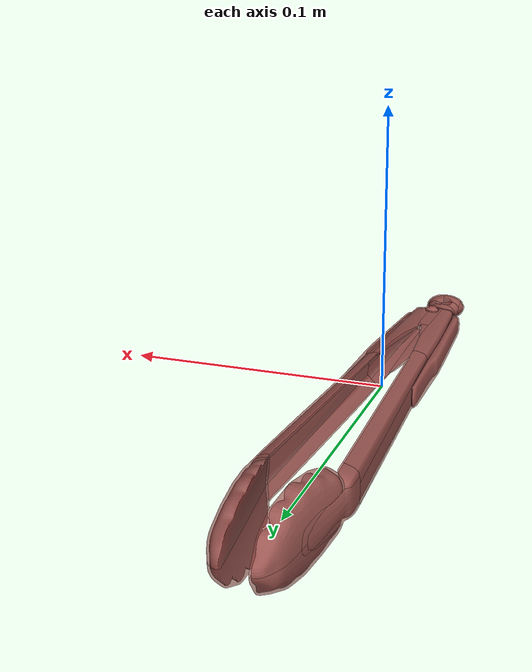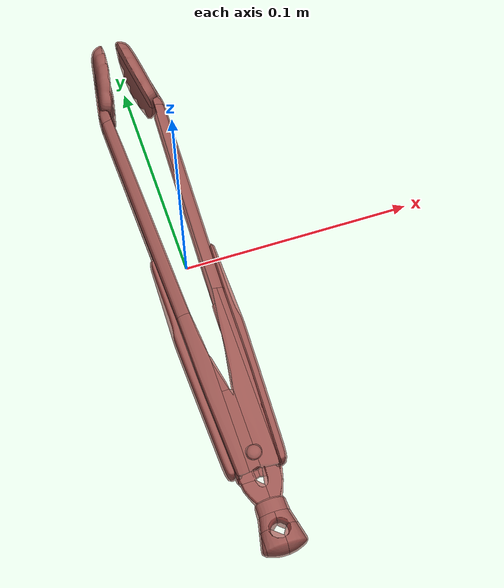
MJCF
<mujoco model="model">
  <option timestep="0.0020" gravity="0.0000 0.0000 -9.8100"/>
  <compiler angle="radian"/>
  <asset>
    <mesh file="visuals/Tong001.obj" name="Tong001_vis"/>
    <mesh file="visuals/Tong001_Body001.obj" name="Tong001_Body001_vis"/>
    <texture file="visuals/T_Tong001_BC001.png" name="Tong001_material" type="2d"/>
    <material name="Tong001_material" rgba="1 1 1 1.0000" texture="Tong001_material" shininess="0.85" specular="0.90"/>
    <texture file="visuals/T_Tong001_BC001.png" name="Tong001_Body001_material" type="2d"/>
    <material name="Tong001_Body001_material" rgba="1 1 1 1.0000" texture="Tong001_Body001_material" shininess="0.16" specular="0.22"/>
    <mesh file="collision/Tong001001.obj" name="Tong001001_mesh"/>
    <mesh file="collision/Tong001002.obj" name="Tong001002_mesh"/>
    <mesh file="collision/Tong001003.obj" name="Tong001003_mesh"/>
    <mesh file="collision/Tong001004.obj" name="Tong001004_mesh"/>
    <mesh file="collision/Tong001005.obj" name="Tong001005_mesh"/>
    <mesh file="collision/Tong001006.obj" name="Tong001006_mesh"/>
    <mesh file="collision/Tong001007.obj" name="Tong001007_mesh"/>
    <mesh file="collision/Tong001008.obj" name="Tong001008_mesh"/>
    <mesh file="collision/Tong001009.obj" name="Tong001009_mesh"/>
    <mesh file="collision/Tong001010.obj" name="Tong001010_mesh"/>
    <mesh file="collision/Tong001011.obj" name="Tong001011_mesh"/>
    <mesh file="collision/Tong001012.obj" name="Tong001012_mesh"/>
    <mesh file="collision/Tong001013.obj" name="Tong001013_mesh"/>
    <mesh file="collision/Tong001014.obj" name="Tong001014_mesh"/>
    <mesh file="collision/Tong001015.obj" name="Tong001015_mesh"/>
    <mesh file="collision/Tong001016.obj" name="Tong001016_mesh"/>
    <mesh file="collision/Tong001017.obj" name="Tong001017_mesh"/>
    <mesh file="collision/Tong001018.obj" name="Tong001018_mesh"/>
    <mesh file="collision/Tong001019.obj" name="Tong001019_mesh"/>
    <mesh file="collision/Tong001020.obj" name="Tong001020_mesh"/>
    <mesh file="collision/Tong001021.obj" name="Tong001021_mesh"/>
    <mesh file="collision/Tong001022.obj" name="Tong001022_mesh"/>
    <mesh file="collision/Tong001023.obj" name="Tong001023_mesh"/>
    <mesh file="collision/Tong001024.obj" name="Tong001024_mesh"/>
    <mesh file="collision/Tong001025.obj" name="Tong001025_mesh"/>
    <mesh file="collision/Tong001026.obj" name="Tong001026_mesh"/>
    <mesh file="collision/Tong001027.obj" name="Tong001027_mesh"/>
    <mesh file="collision/Tong001028.obj" name="Tong001028_mesh"/>
    <mesh file="collision/Tong001_Body001001.obj" name="Tong001_Body001001_mesh"/>
    <mesh file="collision/Tong001_Body001002.obj" name="Tong001_Body001002_mesh"/>
    <mesh file="collision/Tong001_Body001003.obj" name="Tong001_Body001003_mesh"/>
    <mesh file="collision/Tong001_Body001004.obj" name="Tong001_Body001004_mesh"/>
    <mesh file="collision/Tong001_Body001005.obj" name="Tong001_Body001005_mesh"/>
    <mesh file="collision/Tong001_Body001006.obj" name="Tong001_Body001006_mesh"/>
    <mesh file="collision/Tong001_Body001007.obj" name="Tong001_Body001007_mesh"/>
    <mesh file="collision/Tong001_Body001008.obj" name="Tong001_Body001008_mesh"/>
    <mesh file="collision/Tong001_Body001009.obj" name="Tong001_Body001009_mesh"/>
    <mesh file="collision/Tong001_Body001010.obj" name="Tong001_Body001010_mesh"/>
    <mesh file="collision/Tong001_Body001011.obj" name="Tong001_Body001011_mesh"/>
    <mesh file="collision/Tong001_Body001012.obj" name="Tong001_Body001012_mesh"/>
    <mesh file="collision/Tong001_Body001013.obj" name="Tong001_Body001013_mesh"/>
  </asset>
  <default>
    <default class="visual">
      <geom conaffinity="0" contype="0" group="1" type="mesh"/>
    </default>
    <default class="collision">
      <geom group="0" rgba="0.5 0 0 0.5" density="1.0" solref="0.004 1" solimp="0.998 0.998 0.001"/>
    </default>
    <default class="spawn">
      <geom group="0" rgba="1 1 1 0.5" contype="0" conaffinity="0"/>
      <site group="0" rgba="1 1 1 0.5"/>
    </default>
    <default class="region">
      <geom group="1" conaffinity="0" contype="0" rgba="0 1 0 0" mass="0"/>
    </default>
  </default>
  <worldbody>
    <body>
      <body name="object">
        <geom class="region" name="reg_bbox" type="box" pos="9.229999999999829e-06 3.1964999999994914e-05 0.002249625" size="0.01535827 0.129195495 0.012652625"/>
        <geom mesh="Tong001_vis" type="mesh" friction="0.9500 0.3000 0.1000" class="visual" material="Tong001_material"/>
        <body name="Tong001_Body001">
          <geom mesh="Tong001_Body001_vis" type="mesh" friction="0.9500 0.3000 0.1000" class="visual" material="Tong001_Body001_material"/>
        </body>
        <geom mesh="Tong001001_mesh" type="mesh" class="collision" name="collision_1"/>
        <geom mesh="Tong001002_mesh" type="mesh" class="collision" name="collision_2"/>
        <geom mesh="Tong001003_mesh" type="mesh" class="collision" name="collision_3"/>
        <geom mesh="Tong001004_mesh" type="mesh" class="collision" name="collision_4"/>
        <geom mesh="Tong001005_mesh" type="mesh" class="collision" name="collision_5"/>
        <geom mesh="Tong001006_mesh" type="mesh" class="collision" name="collision_6"/>
        <geom mesh="Tong001007_mesh" type="mesh" class="collision" name="collision_7"/>
        <geom mesh="Tong001008_mesh" type="mesh" class="collision" name="collision_8"/>
        <geom mesh="Tong001009_mesh" type="mesh" class="collision" name="collision_9"/>
        <geom mesh="Tong001010_mesh" type="mesh" class="collision" name="collision_10"/>
        <geom mesh="Tong001011_mesh" type="mesh" class="collision" name="collision_11"/>
        <geom mesh="Tong001012_mesh" type="mesh" class="collision" name="collision_12"/>
        <geom mesh="Tong001013_mesh" type="mesh" class="collision" name="collision_13"/>
        <geom mesh="Tong001014_mesh" type="mesh" class="collision" name="collision_14"/>
        <geom mesh="Tong001015_mesh" type="mesh" class="collision" name="collision_15"/>
        <geom mesh="Tong001016_mesh" type="mesh" class="collision" name="collision_16"/>
        <geom mesh="Tong001017_mesh" type="mesh" class="collision" name="collision_17"/>
        <geom mesh="Tong001018_mesh" type="mesh" class="collision" name="collision_18"/>
        <geom mesh="Tong001019_mesh" type="mesh" class="collision" name="collision_19"/>
        <geom mesh="Tong001020_mesh" type="mesh" class="collision" name="collision_20"/>
        <geom mesh="Tong001021_mesh" type="mesh" class="collision" name="collision_21"/>
        <geom mesh="Tong001022_mesh" type="mesh" class="collision" name="collision_22"/>
        <geom mesh="Tong001023_mesh" type="mesh" class="collision" name="collision_23"/>
        <geom mesh="Tong001024_mesh" type="mesh" class="collision" name="collision_24"/>
        <geom mesh="Tong001025_mesh" type="mesh" class="collision" name="collision_25"/>
        <geom mesh="Tong001026_mesh" type="mesh" class="collision" name="collision_26"/>
        <geom mesh="Tong001027_mesh" type="mesh" class="collision" name="collision_27"/>
        <geom mesh="Tong001028_mesh" type="mesh" class="collision" name="collision_28"/>
        <geom mesh="Tong001_Body001001_mesh" type="mesh" class="collision" name="collision_29"/>
        <geom mesh="Tong001_Body001002_mesh" type="mesh" class="collision" name="collision_30"/>
        <geom mesh="Tong001_Body001003_mesh" type="mesh" class="collision" name="collision_31"/>
        <geom mesh="Tong001_Body001004_mesh" type="mesh" class="collision" name="collision_32"/>
        <geom mesh="Tong001_Body001005_mesh" type="mesh" class="collision" name="collision_33"/>
        <geom mesh="Tong001_Body001006_mesh" type="mesh" class="collision" name="collision_34"/>
        <geom mesh="Tong001_Body001007_mesh" type="mesh" class="collision" name="collision_35"/>
        <geom mesh="Tong001_Body001008_mesh" type="mesh" class="collision" name="collision_36"/>
        <geom mesh="Tong001_Body001009_mesh" type="mesh" class="collision" name="collision_37"/>
        <geom mesh="Tong001_Body001010_mesh" type="mesh" class="collision" name="collision_38"/>
        <geom mesh="Tong001_Body001011_mesh" type="mesh" class="collision" name="collision_39"/>
        <geom mesh="Tong001_Body001012_mesh" type="mesh" class="collision" name="collision_40"/>
        <geom mesh="Tong001_Body001013_mesh" type="mesh" class="collision" name="collision_41"/>
      </body>
    </body>
  </worldbody>
  <custom>
    <text name="material_gt" data="metal_plastic"/>
  </custom>
</mujoco>
